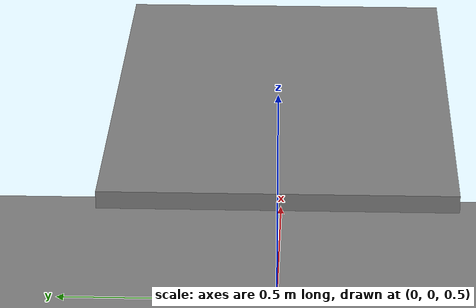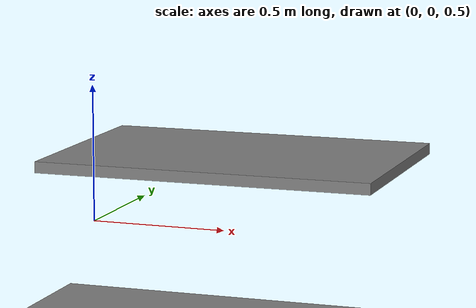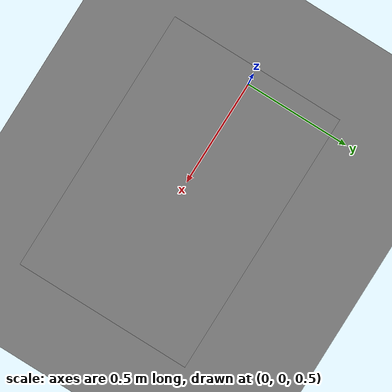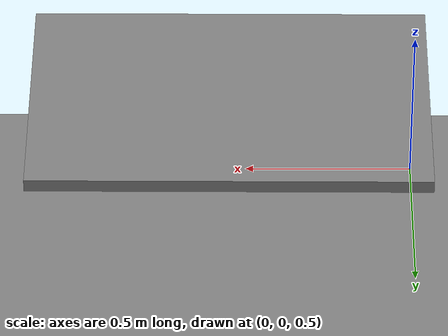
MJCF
<mujoco model="g1d_table_scene">
  <compiler angle="radian"/>

  <option timestep="0.002"/>

  <worldbody>
    <light pos="0 0 3"/>

    <geom
      name="floor"
      type="plane"
      size="5 5 0.1"/>

    <geom
      name="table"
      type="box"
      pos="0.55 0 0.7674"
      size="0.60 0.40 0.02"/>
  </worldbody>
</mujoco>
